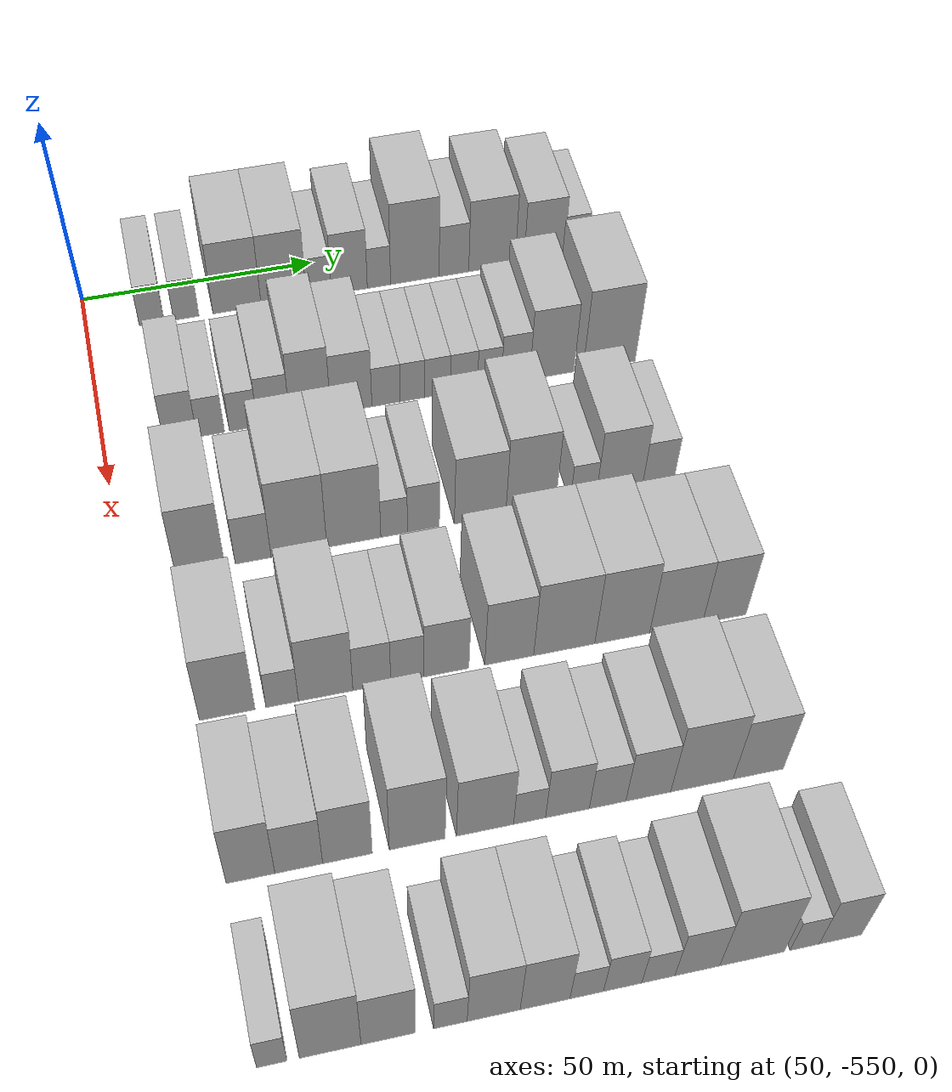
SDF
<sdf version="1.6">
 <world name="default">
  <model name="building_1">
   <static>1</static>
   <pose>50.0000 -536.3486 0 0.000000 0.000000 0.000000</pose>
   <link name="link">
    <pose>0 0 6.00 0 0 0</pose>
    <collision name="collision"><geometry><box><size>20.0000 5.3027 12.0000</size></box></geometry></collision>
    <visual name="visual">
     <cast_shadows>0</cast_shadows>
     <geometry><box><size>20.0000 5.3027 12.0000</size></box></geometry>
     <material>
      <script>
       <uri>model://HANNAS_wall/materials/scripts</uri>
       <uri>model://HANNAS_wall/materials/textures</uri>
       <name>vrc/HANNAS_wall</name>
      </script>
     </material>
    </visual>
   </link>
  </model>
  <model name="building_2">
   <static>1</static>
   <pose>50.0000 -528.9705 0 0.000000 0.000000 0.000000</pose>
   <link name="link">
    <pose>0 0 6.00 0 0 0</pose>
    <collision name="collision"><geometry><box><size>20.0000 5.4536 12.0000</size></box></geometry></collision>
    <visual name="visual">
     <cast_shadows>0</cast_shadows>
     <geometry><box><size>20.0000 5.4536 12.0000</size></box></geometry>
     <material>
      <script>
       <uri>model://HANNAS_wall/materials/scripts</uri>
       <uri>model://HANNAS_wall/materials/textures</uri>
       <name>vrc/HANNAS_wall</name>
      </script>
     </material>
    </visual>
   </link>
  </model>
  <model name="building_3">
   <static>1</static>
   <pose>50.0000 -518.0361 0 0.000000 0.000000 0.000000</pose>
   <link name="link">
    <pose>0 0 10.50 0 0 0</pose>
    <collision name="collision"><geometry><box><size>20.0000 10.4152 21.0000</size></box></geometry></collision>
    <visual name="visual">
     <cast_shadows>0</cast_shadows>
     <geometry><box><size>20.0000 10.4152 21.0000</size></box></geometry>
     <material>
      <script>
       <uri>model://HANNAS_wall/materials/scripts</uri>
       <uri>model://HANNAS_wall/materials/textures</uri>
       <name>vrc/HANNAS_wall</name>
      </script>
     </material>
    </visual>
   </link>
  </model>
  <model name="building_4">
   <static>1</static>
   <pose>50.0000 -507.9157 0 0.000000 0.000000 0.000000</pose>
   <link name="link">
    <pose>0 0 10.50 0 0 0</pose>
    <collision name="collision"><geometry><box><size>20.0000 9.8255 21.0000</size></box></geometry></collision>
    <visual name="visual">
     <cast_shadows>0</cast_shadows>
     <geometry><box><size>20.0000 9.8255 21.0000</size></box></geometry>
     <material>
      <script>
       <uri>model://HANNAS_wall/materials/scripts</uri>
       <uri>model://HANNAS_wall/materials/textures</uri>
       <name>vrc/HANNAS_wall</name>
      </script>
     </material>
    </visual>
   </link>
  </model>
  <model name="building_5">
   <static>1</static>
   <pose>50.0000 -500.2931 0 0.000000 0.000000 0.000000</pose>
   <link name="link">
    <pose>0 0 6.00 0 0 0</pose>
    <collision name="collision"><geometry><box><size>20.0000 5.4197 12.0000</size></box></geometry></collision>
    <visual name="visual">
     <cast_shadows>0</cast_shadows>
     <geometry><box><size>20.0000 5.4197 12.0000</size></box></geometry>
     <material>
      <script>
       <uri>model://HANNAS_wall/materials/scripts</uri>
       <uri>model://HANNAS_wall/materials/textures</uri>
       <name>vrc/HANNAS_wall</name>
      </script>
     </material>
    </visual>
   </link>
  </model>
  <model name="building_6">
   <static>1</static>
   <pose>50.0000 -493.6248 0 0.000000 0.000000 0.000000</pose>
   <link name="link">
    <pose>0 0 9.00 0 0 0</pose>
    <collision name="collision"><geometry><box><size>20.0000 7.9168 18.0000</size></box></geometry></collision>
    <visual name="visual">
     <cast_shadows>0</cast_shadows>
     <geometry><box><size>20.0000 7.9168 18.0000</size></box></geometry>
     <material>
      <script>
       <uri>model://HANNAS_wall/materials/scripts</uri>
       <uri>model://HANNAS_wall/materials/textures</uri>
       <name>vrc/HANNAS_wall</name>
      </script>
     </material>
    </visual>
   </link>
  </model>
  <model name="building_7">
   <static>1</static>
   <pose>50.0000 -487.1094 0 0.000000 0.000000 0.000000</pose>
   <link name="link">
    <pose>0 0 6.00 0 0 0</pose>
    <collision name="collision"><geometry><box><size>20.0000 5.1140 12.0000</size></box></geometry></collision>
    <visual name="visual">
     <cast_shadows>0</cast_shadows>
     <geometry><box><size>20.0000 5.1140 12.0000</size></box></geometry>
     <material>
      <script>
       <uri>model://HANNAS_wall/materials/scripts</uri>
       <uri>model://HANNAS_wall/materials/textures</uri>
       <name>vrc/HANNAS_wall</name>
      </script>
     </material>
    </visual>
   </link>
  </model>
  <model name="building_8">
   <static>1</static>
   <pose>50.0000 -479.1775 0 0.000000 0.000000 0.000000</pose>
   <link name="link">
    <pose>0 0 12.00 0 0 0</pose>
    <collision name="collision"><geometry><box><size>20.0000 10.7500 24.0000</size></box></geometry></collision>
    <visual name="visual">
     <cast_shadows>0</cast_shadows>
     <geometry><box><size>20.0000 10.7500 24.0000</size></box></geometry>
     <material>
      <script>
       <uri>model://HANNAS_wall/materials/scripts</uri>
       <uri>model://HANNAS_wall/materials/textures</uri>
       <name>vrc/HANNAS_wall</name>
      </script>
     </material>
    </visual>
   </link>
  </model>
  <model name="building_9">
   <static>1</static>
   <pose>50.0000 -470.5047 0 0.000000 0.000000 0.000000</pose>
   <link name="link">
    <pose>0 0 7.50 0 0 0</pose>
    <collision name="collision"><geometry><box><size>20.0000 6.5956 15.0000</size></box></geometry></collision>
    <visual name="visual">
     <cast_shadows>0</cast_shadows>
     <geometry><box><size>20.0000 6.5956 15.0000</size></box></geometry>
     <material>
      <script>
       <uri>model://HANNAS_wall/materials/scripts</uri>
       <uri>model://HANNAS_wall/materials/textures</uri>
       <name>vrc/HANNAS_wall</name>
      </script>
     </material>
    </visual>
   </link>
  </model>
  <model name="building_10">
   <static>1</static>
   <pose>50.0000 -462.0079 0 0.000000 0.000000 0.000000</pose>
   <link name="link">
    <pose>0 0 10.50 0 0 0</pose>
    <collision name="collision"><geometry><box><size>20.0000 10.3980 21.0000</size></box></geometry></collision>
    <visual name="visual">
     <cast_shadows>0</cast_shadows>
     <geometry><box><size>20.0000 10.3980 21.0000</size></box></geometry>
     <material>
      <script>
       <uri>model://HANNAS_wall/materials/scripts</uri>
       <uri>model://HANNAS_wall/materials/textures</uri>
       <name>vrc/HANNAS_wall</name>
      </script>
     </material>
    </visual>
   </link>
  </model>
  <model name="building_11">
   <static>1</static>
   <pose>50.0000 -450.3108 0 0.000000 0.000000 0.000000</pose>
   <link name="link">
    <pose>0 0 9.00 0 0 0</pose>
    <collision name="collision"><geometry><box><size>20.0000 8.9963 18.0000</size></box></geometry></collision>
    <visual name="visual">
     <cast_shadows>0</cast_shadows>
     <geometry><box><size>20.0000 8.9963 18.0000</size></box></geometry>
     <material>
      <script>
       <uri>model://HANNAS_wall/materials/scripts</uri>
       <uri>model://HANNAS_wall/materials/textures</uri>
       <name>vrc/HANNAS_wall</name>
      </script>
     </material>
    </visual>
   </link>
  </model>
  <model name="building_12">
   <static>1</static>
   <pose>50.0000 -443.0770 0 0.000000 0.000000 0.000000</pose>
   <link name="link">
    <pose>0 0 6.00 0 0 0</pose>
    <collision name="collision"><geometry><box><size>20.0000 5.4713 12.0000</size></box></geometry></collision>
    <visual name="visual">
     <cast_shadows>0</cast_shadows>
     <geometry><box><size>20.0000 5.4713 12.0000</size></box></geometry>
     <material>
      <script>
       <uri>model://HANNAS_wall/materials/scripts</uri>
       <uri>model://HANNAS_wall/materials/textures</uri>
       <name>vrc/HANNAS_wall</name>
      </script>
     </material>
    </visual>
   </link>
  </model>
  <model name="building_127">
   <static>1</static>
   <pose>82.0000 -534.6347 0 0.000000 0.000000 0.000000</pose>
   <link name="link">
    <pose>0 0 7.50 0 0 0</pose>
    <collision name="collision"><geometry><box><size>20.0000 6.7305 15.0000</size></box></geometry></collision>
    <visual name="visual">
     <cast_shadows>0</cast_shadows>
     <geometry><box><size>20.0000 6.7305 15.0000</size></box></geometry>
     <material>
      <script>
       <uri>model://HANNAS_wall/materials/scripts</uri>
       <uri>model://HANNAS_wall/materials/textures</uri>
       <name>vrc/HANNAS_wall</name>
      </script>
     </material>
    </visual>
   </link>
  </model>
  <model name="building_128">
   <static>1</static>
   <pose>82.0000 -528.4483 0 0.000000 0.000000 0.000000</pose>
   <link name="link">
    <pose>0 0 6.00 0 0 0</pose>
    <collision name="collision"><geometry><box><size>20.0000 5.6423 12.0000</size></box></geometry></collision>
    <visual name="visual">
     <cast_shadows>0</cast_shadows>
     <geometry><box><size>20.0000 5.6423 12.0000</size></box></geometry>
     <material>
      <script>
       <uri>model://HANNAS_wall/materials/scripts</uri>
       <uri>model://HANNAS_wall/materials/textures</uri>
       <name>vrc/HANNAS_wall</name>
      </script>
     </material>
    </visual>
   </link>
  </model>
  <model name="building_129">
   <static>1</static>
   <pose>82.0000 -521.7568 0 0.000000 0.000000 0.000000</pose>
   <link name="link">
    <pose>0 0 6.00 0 0 0</pose>
    <collision name="collision"><geometry><box><size>20.0000 5.7408 12.0000</size></box></geometry></collision>
    <visual name="visual">
     <cast_shadows>0</cast_shadows>
     <geometry><box><size>20.0000 5.7408 12.0000</size></box></geometry>
     <material>
      <script>
       <uri>model://HANNAS_wall/materials/scripts</uri>
       <uri>model://HANNAS_wall/materials/textures</uri>
       <name>vrc/HANNAS_wall</name>
      </script>
     </material>
    </visual>
   </link>
  </model>
  <model name="building_130">
   <static>1</static>
   <pose>82.0000 -515.5422 0 0.000000 0.000000 0.000000</pose>
   <link name="link">
    <pose>0 0 7.50 0 0 0</pose>
    <collision name="collision"><geometry><box><size>20.0000 6.6884 15.0000</size></box></geometry></collision>
    <visual name="visual">
     <cast_shadows>0</cast_shadows>
     <geometry><box><size>20.0000 6.6884 15.0000</size></box></geometry>
     <material>
      <script>
       <uri>model://HANNAS_wall/materials/scripts</uri>
       <uri>model://HANNAS_wall/materials/textures</uri>
       <name>vrc/HANNAS_wall</name>
      </script>
     </material>
    </visual>
   </link>
  </model>
  <model name="building_131">
   <static>1</static>
   <pose>82.0000 -507.9751 0 0.000000 0.000000 0.000000</pose>
   <link name="link">
    <pose>0 0 10.50 0 0 0</pose>
    <collision name="collision"><geometry><box><size>20.0000 8.4457 21.0000</size></box></geometry></collision>
    <visual name="visual">
     <cast_shadows>0</cast_shadows>
     <geometry><box><size>20.0000 8.4457 21.0000</size></box></geometry>
     <material>
      <script>
       <uri>model://HANNAS_wall/materials/scripts</uri>
       <uri>model://HANNAS_wall/materials/textures</uri>
       <name>vrc/HANNAS_wall</name>
      </script>
     </material>
    </visual>
   </link>
  </model>
  <model name="building_132">
   <static>1</static>
   <pose>82.0000 -499.4536 0 0.000000 0.000000 0.000000</pose>
   <link name="link">
    <pose>0 0 9.00 0 0 0</pose>
    <collision name="collision"><geometry><box><size>20.0000 8.5973 18.0000</size></box></geometry></collision>
    <visual name="visual">
     <cast_shadows>0</cast_shadows>
     <geometry><box><size>20.0000 8.5973 18.0000</size></box></geometry>
     <material>
      <script>
       <uri>model://HANNAS_wall/materials/scripts</uri>
       <uri>model://HANNAS_wall/materials/textures</uri>
       <name>vrc/HANNAS_wall</name>
      </script>
     </material>
    </visual>
   </link>
  </model>
  <model name="building_133">
   <static>1</static>
   <pose>82.0000 -492.1977 0 0.000000 0.000000 0.000000</pose>
   <link name="link">
    <pose>0 0 6.00 0 0 0</pose>
    <collision name="collision"><geometry><box><size>20.0000 5.9144 12.0000</size></box></geometry></collision>
    <visual name="visual">
     <cast_shadows>0</cast_shadows>
     <geometry><box><size>20.0000 5.9144 12.0000</size></box></geometry>
     <material>
      <script>
       <uri>model://HANNAS_wall/materials/scripts</uri>
       <uri>model://HANNAS_wall/materials/textures</uri>
       <name>vrc/HANNAS_wall</name>
      </script>
     </material>
    </visual>
   </link>
  </model>
  <model name="building_134">
   <static>1</static>
   <pose>82.0000 -486.6714 0 0.000000 0.000000 0.000000</pose>
   <link name="link">
    <pose>0 0 6.00 0 0 0</pose>
    <collision name="collision"><geometry><box><size>20.0000 5.1383 12.0000</size></box></geometry></collision>
    <visual name="visual">
     <cast_shadows>0</cast_shadows>
     <geometry><box><size>20.0000 5.1383 12.0000</size></box></geometry>
     <material>
      <script>
       <uri>model://HANNAS_wall/materials/scripts</uri>
       <uri>model://HANNAS_wall/materials/textures</uri>
       <name>vrc/HANNAS_wall</name>
      </script>
     </material>
    </visual>
   </link>
  </model>
  <model name="building_135">
   <static>1</static>
   <pose>82.0000 -481.3911 0 0.000000 0.000000 0.000000</pose>
   <link name="link">
    <pose>0 0 6.00 0 0 0</pose>
    <collision name="collision"><geometry><box><size>20.0000 5.4222 12.0000</size></box></geometry></collision>
    <visual name="visual">
     <cast_shadows>0</cast_shadows>
     <geometry><box><size>20.0000 5.4222 12.0000</size></box></geometry>
     <material>
      <script>
       <uri>model://HANNAS_wall/materials/scripts</uri>
       <uri>model://HANNAS_wall/materials/textures</uri>
       <name>vrc/HANNAS_wall</name>
      </script>
     </material>
    </visual>
   </link>
  </model>
  <model name="building_136">
   <static>1</static>
   <pose>82.0000 -475.8081 0 0.000000 0.000000 0.000000</pose>
   <link name="link">
    <pose>0 0 6.00 0 0 0</pose>
    <collision name="collision"><geometry><box><size>20.0000 5.7438 12.0000</size></box></geometry></collision>
    <visual name="visual">
     <cast_shadows>0</cast_shadows>
     <geometry><box><size>20.0000 5.7438 12.0000</size></box></geometry>
     <material>
      <script>
       <uri>model://HANNAS_wall/materials/scripts</uri>
       <uri>model://HANNAS_wall/materials/textures</uri>
       <name>vrc/HANNAS_wall</name>
      </script>
     </material>
    </visual>
   </link>
  </model>
  <model name="building_137">
   <static>1</static>
   <pose>82.0000 -470.3899 0 0.000000 0.000000 0.000000</pose>
   <link name="link">
    <pose>0 0 6.00 0 0 0</pose>
    <collision name="collision"><geometry><box><size>20.0000 5.0925 12.0000</size></box></geometry></collision>
    <visual name="visual">
     <cast_shadows>0</cast_shadows>
     <geometry><box><size>20.0000 5.0925 12.0000</size></box></geometry>
     <material>
      <script>
       <uri>model://HANNAS_wall/materials/scripts</uri>
       <uri>model://HANNAS_wall/materials/textures</uri>
       <name>vrc/HANNAS_wall</name>
      </script>
     </material>
    </visual>
   </link>
  </model>
  <model name="building_138">
   <static>1</static>
   <pose>82.0000 -464.8217 0 0.000000 0.000000 0.000000</pose>
   <link name="link">
    <pose>0 0 7.50 0 0 0</pose>
    <collision name="collision"><geometry><box><size>20.0000 6.0440 15.0000</size></box></geometry></collision>
    <visual name="visual">
     <cast_shadows>0</cast_shadows>
     <geometry><box><size>20.0000 6.0440 15.0000</size></box></geometry>
     <material>
      <script>
       <uri>model://HANNAS_wall/materials/scripts</uri>
       <uri>model://HANNAS_wall/materials/textures</uri>
       <name>vrc/HANNAS_wall</name>
      </script>
     </material>
    </visual>
   </link>
  </model>
  <model name="building_139">
   <static>1</static>
   <pose>82.0000 -457.0503 0 0.000000 0.000000 0.000000</pose>
   <link name="link">
    <pose>0 0 10.50 0 0 0</pose>
    <collision name="collision"><geometry><box><size>20.0000 9.4988 21.0000</size></box></geometry></collision>
    <visual name="visual">
     <cast_shadows>0</cast_shadows>
     <geometry><box><size>20.0000 9.4988 21.0000</size></box></geometry>
     <material>
      <script>
       <uri>model://HANNAS_wall/materials/scripts</uri>
       <uri>model://HANNAS_wall/materials/textures</uri>
       <name>vrc/HANNAS_wall</name>
      </script>
     </material>
    </visual>
   </link>
  </model>
  <model name="building_140">
   <static>1</static>
   <pose>82.0000 -444.6660 0 0.000000 0.000000 0.000000</pose>
   <link name="link">
    <pose>0 0 12.00 0 0 0</pose>
    <collision name="collision"><geometry><box><size>20.0000 11.2698 24.0000</size></box></geometry></collision>
    <visual name="visual">
     <cast_shadows>0</cast_shadows>
     <geometry><box><size>20.0000 11.2698 24.0000</size></box></geometry>
     <material>
      <script>
       <uri>model://HANNAS_wall/materials/scripts</uri>
       <uri>model://HANNAS_wall/materials/textures</uri>
       <name>vrc/HANNAS_wall</name>
      </script>
     </material>
    </visual>
   </link>
  </model>
  <model name="building_244">
   <static>1</static>
   <pose>114.0000 -535.2233 0 0.000000 0.000000 0.000000</pose>
   <link name="link">
    <pose>0 0 10.50 0 0 0</pose>
    <collision name="collision"><geometry><box><size>20.0000 9.5535 21.0000</size></box></geometry></collision>
    <visual name="visual">
     <cast_shadows>0</cast_shadows>
     <geometry><box><size>20.0000 9.5535 21.0000</size></box></geometry>
     <material>
      <script>
       <uri>model://HANNAS_wall/materials/scripts</uri>
       <uri>model://HANNAS_wall/materials/textures</uri>
       <name>vrc/HANNAS_wall</name>
      </script>
     </material>
    </visual>
   </link>
  </model>
  <model name="building_245">
   <static>1</static>
   <pose>114.0000 -524.9560 0 0.000000 0.000000 0.000000</pose>
   <link name="link">
    <pose>0 0 7.50 0 0 0</pose>
    <collision name="collision"><geometry><box><size>20.0000 6.9810 15.0000</size></box></geometry></collision>
    <visual name="visual">
     <cast_shadows>0</cast_shadows>
     <geometry><box><size>20.0000 6.9810 15.0000</size></box></geometry>
     <material>
      <script>
       <uri>model://HANNAS_wall/materials/scripts</uri>
       <uri>model://HANNAS_wall/materials/textures</uri>
       <name>vrc/HANNAS_wall</name>
      </script>
     </material>
    </visual>
   </link>
  </model>
  <model name="building_246">
   <static>1</static>
   <pose>114.0000 -516.0044 0 0.000000 0.000000 0.000000</pose>
   <link name="link">
    <pose>0 0 12.00 0 0 0</pose>
    <collision name="collision"><geometry><box><size>20.0000 10.9223 24.0000</size></box></geometry></collision>
    <visual name="visual">
     <cast_shadows>0</cast_shadows>
     <geometry><box><size>20.0000 10.9223 24.0000</size></box></geometry>
     <material>
      <script>
       <uri>model://HANNAS_wall/materials/scripts</uri>
       <uri>model://HANNAS_wall/materials/textures</uri>
       <name>vrc/HANNAS_wall</name>
      </script>
     </material>
    </visual>
   </link>
  </model>
  <model name="building_247">
   <static>1</static>
   <pose>114.0000 -505.2131 0 0.000000 0.000000 0.000000</pose>
   <link name="link">
    <pose>0 0 12.00 0 0 0</pose>
    <collision name="collision"><geometry><box><size>20.0000 10.6601 24.0000</size></box></geometry></collision>
    <visual name="visual">
     <cast_shadows>0</cast_shadows>
     <geometry><box><size>20.0000 10.6601 24.0000</size></box></geometry>
     <material>
      <script>
       <uri>model://HANNAS_wall/materials/scripts</uri>
       <uri>model://HANNAS_wall/materials/textures</uri>
       <name>vrc/HANNAS_wall</name>
      </script>
     </material>
    </visual>
   </link>
  </model>
  <model name="building_248">
   <static>1</static>
   <pose>114.0000 -497.2345 0 0.000000 0.000000 0.000000</pose>
   <link name="link">
    <pose>0 0 6.00 0 0 0</pose>
    <collision name="collision"><geometry><box><size>20.0000 5.2972 12.0000</size></box></geometry></collision>
    <visual name="visual">
     <cast_shadows>0</cast_shadows>
     <geometry><box><size>20.0000 5.2972 12.0000</size></box></geometry>
     <material>
      <script>
       <uri>model://HANNAS_wall/materials/scripts</uri>
       <uri>model://HANNAS_wall/materials/textures</uri>
       <name>vrc/HANNAS_wall</name>
      </script>
     </material>
    </visual>
   </link>
  </model>
  <model name="building_249">
   <static>1</static>
   <pose>114.0000 -491.4112 0 0.000000 0.000000 0.000000</pose>
   <link name="link">
    <pose>0 0 7.50 0 0 0</pose>
    <collision name="collision"><geometry><box><size>20.0000 6.3495 15.0000</size></box></geometry></collision>
    <visual name="visual">
     <cast_shadows>0</cast_shadows>
     <geometry><box><size>20.0000 6.3495 15.0000</size></box></geometry>
     <material>
      <script>
       <uri>model://HANNAS_wall/materials/scripts</uri>
       <uri>model://HANNAS_wall/materials/textures</uri>
       <name>vrc/HANNAS_wall</name>
      </script>
     </material>
    </visual>
   </link>
  </model>
  <model name="building_250">
   <static>1</static>
   <pose>114.0000 -480.0677 0 0.000000 0.000000 0.000000</pose>
   <link name="link">
    <pose>0 0 10.50 0 0 0</pose>
    <collision name="collision"><geometry><box><size>20.0000 10.3374 21.0000</size></box></geometry></collision>
    <visual name="visual">
     <cast_shadows>0</cast_shadows>
     <geometry><box><size>20.0000 10.3374 21.0000</size></box></geometry>
     <material>
      <script>
       <uri>model://HANNAS_wall/materials/scripts</uri>
       <uri>model://HANNAS_wall/materials/textures</uri>
       <name>vrc/HANNAS_wall</name>
      </script>
     </material>
    </visual>
   </link>
  </model>
  <model name="building_251">
   <static>1</static>
   <pose>114.0000 -469.8584 0 0.000000 0.000000 0.000000</pose>
   <link name="link">
    <pose>0 0 12.00 0 0 0</pose>
    <collision name="collision"><geometry><box><size>20.0000 10.0812 24.0000</size></box></geometry></collision>
    <visual name="visual">
     <cast_shadows>0</cast_shadows>
     <geometry><box><size>20.0000 10.0812 24.0000</size></box></geometry>
     <material>
      <script>
       <uri>model://HANNAS_wall/materials/scripts</uri>
       <uri>model://HANNAS_wall/materials/textures</uri>
       <name>vrc/HANNAS_wall</name>
      </script>
     </material>
    </visual>
   </link>
  </model>
  <model name="building_252">
   <static>1</static>
   <pose>114.0000 -459.1883 0 0.000000 0.000000 0.000000</pose>
   <link name="link">
    <pose>0 0 6.00 0 0 0</pose>
    <collision name="collision"><geometry><box><size>20.0000 5.2591 12.0000</size></box></geometry></collision>
    <visual name="visual">
     <cast_shadows>0</cast_shadows>
     <geometry><box><size>20.0000 5.2591 12.0000</size></box></geometry>
     <material>
      <script>
       <uri>model://HANNAS_wall/materials/scripts</uri>
       <uri>model://HANNAS_wall/materials/textures</uri>
       <name>vrc/HANNAS_wall</name>
      </script>
     </material>
    </visual>
   </link>
  </model>
  <model name="building_253">
   <static>1</static>
   <pose>114.0000 -451.8516 0 0.000000 0.000000 0.000000</pose>
   <link name="link">
    <pose>0 0 10.50 0 0 0</pose>
    <collision name="collision"><geometry><box><size>20.0000 9.4144 21.0000</size></box></geometry></collision>
    <visual name="visual">
     <cast_shadows>0</cast_shadows>
     <geometry><box><size>20.0000 9.4144 21.0000</size></box></geometry>
     <material>
      <script>
       <uri>model://HANNAS_wall/materials/scripts</uri>
       <uri>model://HANNAS_wall/materials/textures</uri>
       <name>vrc/HANNAS_wall</name>
      </script>
     </material>
    </visual>
   </link>
  </model>
  <model name="building_254">
   <static>1</static>
   <pose>114.0000 -443.9017 0 0.000000 0.000000 0.000000</pose>
   <link name="link">
    <pose>0 0 7.50 0 0 0</pose>
    <collision name="collision"><geometry><box><size>20.0000 6.4853 15.0000</size></box></geometry></collision>
    <visual name="visual">
     <cast_shadows>0</cast_shadows>
     <geometry><box><size>20.0000 6.4853 15.0000</size></box></geometry>
     <material>
      <script>
       <uri>model://HANNAS_wall/materials/scripts</uri>
       <uri>model://HANNAS_wall/materials/textures</uri>
       <name>vrc/HANNAS_wall</name>
      </script>
     </material>
    </visual>
   </link>
  </model>
  <model name="building_362">
   <static>1</static>
   <pose>146.0000 -534.9016 0 0.000000 0.000000 0.000000</pose>
   <link name="link">
    <pose>0 0 10.50 0 0 0</pose>
    <collision name="collision"><geometry><box><size>20.0000 10.1967 21.0000</size></box></geometry></collision>
    <visual name="visual">
     <cast_shadows>0</cast_shadows>
     <geometry><box><size>20.0000 10.1967 21.0000</size></box></geometry>
     <material>
      <script>
       <uri>model://HANNAS_wall/materials/scripts</uri>
       <uri>model://HANNAS_wall/materials/textures</uri>
       <name>vrc/HANNAS_wall</name>
      </script>
     </material>
    </visual>
   </link>
  </model>
  <model name="building_363">
   <static>1</static>
   <pose>146.0000 -524.8042 0 0.000000 0.000000 0.000000</pose>
   <link name="link">
    <pose>0 0 6.00 0 0 0</pose>
    <collision name="collision"><geometry><box><size>20.0000 5.9981 12.0000</size></box></geometry></collision>
    <visual name="visual">
     <cast_shadows>0</cast_shadows>
     <geometry><box><size>20.0000 5.9981 12.0000</size></box></geometry>
     <material>
      <script>
       <uri>model://HANNAS_wall/materials/scripts</uri>
       <uri>model://HANNAS_wall/materials/textures</uri>
       <name>vrc/HANNAS_wall</name>
      </script>
     </material>
    </visual>
   </link>
  </model>
  <model name="building_364">
   <static>1</static>
   <pose>146.0000 -516.7475 0 0.000000 0.000000 0.000000</pose>
   <link name="link">
    <pose>0 0 10.50 0 0 0</pose>
    <collision name="collision"><geometry><box><size>20.0000 10.1153 21.0000</size></box></geometry></collision>
    <visual name="visual">
     <cast_shadows>0</cast_shadows>
     <geometry><box><size>20.0000 10.1153 21.0000</size></box></geometry>
     <material>
      <script>
       <uri>model://HANNAS_wall/materials/scripts</uri>
       <uri>model://HANNAS_wall/materials/textures</uri>
       <name>vrc/HANNAS_wall</name>
      </script>
     </material>
    </visual>
   </link>
  </model>
  <model name="building_365">
   <static>1</static>
   <pose>146.0000 -508.1534 0 0.000000 0.000000 0.000000</pose>
   <link name="link">
    <pose>0 0 7.50 0 0 0</pose>
    <collision name="collision"><geometry><box><size>20.0000 7.0729 15.0000</size></box></geometry></collision>
    <visual name="visual">
     <cast_shadows>0</cast_shadows>
     <geometry><box><size>20.0000 7.0729 15.0000</size></box></geometry>
     <material>
      <script>
       <uri>model://HANNAS_wall/materials/scripts</uri>
       <uri>model://HANNAS_wall/materials/textures</uri>
       <name>vrc/HANNAS_wall</name>
      </script>
     </material>
    </visual>
   </link>
  </model>
  <model name="building_366">
   <static>1</static>
   <pose>146.0000 -501.5098 0 0.000000 0.000000 0.000000</pose>
   <link name="link">
    <pose>0 0 7.50 0 0 0</pose>
    <collision name="collision"><geometry><box><size>20.0000 6.2142 15.0000</size></box></geometry></collision>
    <visual name="visual">
     <cast_shadows>0</cast_shadows>
     <geometry><box><size>20.0000 6.2142 15.0000</size></box></geometry>
     <material>
      <script>
       <uri>model://HANNAS_wall/materials/scripts</uri>
       <uri>model://HANNAS_wall/materials/textures</uri>
       <name>vrc/HANNAS_wall</name>
      </script>
     </material>
    </visual>
   </link>
  </model>
  <model name="building_367">
   <static>1</static>
   <pose>146.0000 -494.1438 0 0.000000 0.000000 0.000000</pose>
   <link name="link">
    <pose>0 0 9.00 0 0 0</pose>
    <collision name="collision"><geometry><box><size>20.0000 8.5179 18.0000</size></box></geometry></collision>
    <visual name="visual">
     <cast_shadows>0</cast_shadows>
     <geometry><box><size>20.0000 8.5179 18.0000</size></box></geometry>
     <material>
      <script>
       <uri>model://HANNAS_wall/materials/scripts</uri>
       <uri>model://HANNAS_wall/materials/textures</uri>
       <name>vrc/HANNAS_wall</name>
      </script>
     </material>
    </visual>
   </link>
  </model>
  <model name="building_368">
   <static>1</static>
   <pose>146.0000 -482.2129 0 0.000000 0.000000 0.000000</pose>
   <link name="link">
    <pose>0 0 10.50 0 0 0</pose>
    <collision name="collision"><geometry><box><size>20.0000 9.3439 21.0000</size></box></geometry></collision>
    <visual name="visual">
     <cast_shadows>0</cast_shadows>
     <geometry><box><size>20.0000 9.3439 21.0000</size></box></geometry>
     <material>
      <script>
       <uri>model://HANNAS_wall/materials/scripts</uri>
       <uri>model://HANNAS_wall/materials/textures</uri>
       <name>vrc/HANNAS_wall</name>
      </script>
     </material>
    </visual>
   </link>
  </model>
  <model name="building_369">
   <static>1</static>
   <pose>146.0000 -471.6706 0 0.000000 0.000000 0.000000</pose>
   <link name="link">
    <pose>0 0 12.00 0 0 0</pose>
    <collision name="collision"><geometry><box><size>20.0000 11.7408 24.0000</size></box></geometry></collision>
    <visual name="visual">
     <cast_shadows>0</cast_shadows>
     <geometry><box><size>20.0000 11.7408 24.0000</size></box></geometry>
     <material>
      <script>
       <uri>model://HANNAS_wall/materials/scripts</uri>
       <uri>model://HANNAS_wall/materials/textures</uri>
       <name>vrc/HANNAS_wall</name>
      </script>
     </material>
    </visual>
   </link>
  </model>
  <model name="building_370">
   <static>1</static>
   <pose>146.0000 -460.4705 0 0.000000 0.000000 0.000000</pose>
   <link name="link">
    <pose>0 0 12.00 0 0 0</pose>
    <collision name="collision"><geometry><box><size>20.0000 10.6593 24.0000</size></box></geometry></collision>
    <visual name="visual">
     <cast_shadows>0</cast_shadows>
     <geometry><box><size>20.0000 10.6593 24.0000</size></box></geometry>
     <material>
      <script>
       <uri>model://HANNAS_wall/materials/scripts</uri>
       <uri>model://HANNAS_wall/materials/textures</uri>
       <name>vrc/HANNAS_wall</name>
      </script>
     </material>
    </visual>
   </link>
  </model>
  <model name="building_371">
   <static>1</static>
   <pose>146.0000 -449.9640 0 0.000000 0.000000 0.000000</pose>
   <link name="link">
    <pose>0 0 10.50 0 0 0</pose>
    <collision name="collision"><geometry><box><size>20.0000 10.3537 21.0000</size></box></geometry></collision>
    <visual name="visual">
     <cast_shadows>0</cast_shadows>
     <geometry><box><size>20.0000 10.3537 21.0000</size></box></geometry>
     <material>
      <script>
       <uri>model://HANNAS_wall/materials/scripts</uri>
       <uri>model://HANNAS_wall/materials/textures</uri>
       <name>vrc/HANNAS_wall</name>
      </script>
     </material>
    </visual>
   </link>
  </model>
  <model name="building_372">
   <static>1</static>
   <pose>146.0000 -440.5031 0 0.000000 0.000000 0.000000</pose>
   <link name="link">
    <pose>0 0 10.50 0 0 0</pose>
    <collision name="collision"><geometry><box><size>20.0000 8.5681 21.0000</size></box></geometry></collision>
    <visual name="visual">
     <cast_shadows>0</cast_shadows>
     <geometry><box><size>20.0000 8.5681 21.0000</size></box></geometry>
     <material>
      <script>
       <uri>model://HANNAS_wall/materials/scripts</uri>
       <uri>model://HANNAS_wall/materials/textures</uri>
       <name>vrc/HANNAS_wall</name>
      </script>
     </material>
    </visual>
   </link>
  </model>
  <model name="building_483">
   <static>1</static>
   <pose>178.0000 -535.7918 0 0.000000 0.000000 0.000000</pose>
   <link name="link">
    <pose>0 0 10.50 0 0 0</pose>
    <collision name="collision"><geometry><box><size>20.0000 8.4163 21.0000</size></box></geometry></collision>
    <visual name="visual">
     <cast_shadows>0</cast_shadows>
     <geometry><box><size>20.0000 8.4163 21.0000</size></box></geometry>
     <material>
      <script>
       <uri>model://HANNAS_wall/materials/scripts</uri>
       <uri>model://HANNAS_wall/materials/textures</uri>
       <name>vrc/HANNAS_wall</name>
      </script>
     </material>
    </visual>
   </link>
  </model>
  <model name="building_484">
   <static>1</static>
   <pose>178.0000 -527.4279 0 0.000000 0.000000 0.000000</pose>
   <link name="link">
    <pose>0 0 9.00 0 0 0</pose>
    <collision name="collision"><geometry><box><size>20.0000 8.3116 18.0000</size></box></geometry></collision>
    <visual name="visual">
     <cast_shadows>0</cast_shadows>
     <geometry><box><size>20.0000 8.3116 18.0000</size></box></geometry>
     <material>
      <script>
       <uri>model://HANNAS_wall/materials/scripts</uri>
       <uri>model://HANNAS_wall/materials/textures</uri>
       <name>vrc/HANNAS_wall</name>
      </script>
     </material>
    </visual>
   </link>
  </model>
  <model name="building_485">
   <static>1</static>
   <pose>178.0000 -518.9214 0 0.000000 0.000000 0.000000</pose>
   <link name="link">
    <pose>0 0 10.50 0 0 0</pose>
    <collision name="collision"><geometry><box><size>20.0000 8.7014 21.0000</size></box></geometry></collision>
    <visual name="visual">
     <cast_shadows>0</cast_shadows>
     <geometry><box><size>20.0000 8.7014 21.0000</size></box></geometry>
     <material>
      <script>
       <uri>model://HANNAS_wall/materials/scripts</uri>
       <uri>model://HANNAS_wall/materials/textures</uri>
       <name>vrc/HANNAS_wall</name>
      </script>
     </material>
    </visual>
   </link>
  </model>
  <model name="building_486">
   <static>1</static>
   <pose>178.0000 -506.6313 0 0.000000 0.000000 0.000000</pose>
   <link name="link">
    <pose>0 0 12.00 0 0 0</pose>
    <collision name="collision"><geometry><box><size>20.0000 9.8787 24.0000</size></box></geometry></collision>
    <visual name="visual">
     <cast_shadows>0</cast_shadows>
     <geometry><box><size>20.0000 9.8787 24.0000</size></box></geometry>
     <material>
      <script>
       <uri>model://HANNAS_wall/materials/scripts</uri>
       <uri>model://HANNAS_wall/materials/textures</uri>
       <name>vrc/HANNAS_wall</name>
      </script>
     </material>
    </visual>
   </link>
  </model>
  <model name="building_487">
   <static>1</static>
   <pose>178.0000 -494.5780 0 0.000000 0.000000 0.000000</pose>
   <link name="link">
    <pose>0 0 10.50 0 0 0</pose>
    <collision name="collision"><geometry><box><size>20.0000 10.2279 21.0000</size></box></geometry></collision>
    <visual name="visual">
     <cast_shadows>0</cast_shadows>
     <geometry><box><size>20.0000 10.2279 21.0000</size></box></geometry>
     <material>
      <script>
       <uri>model://HANNAS_wall/materials/scripts</uri>
       <uri>model://HANNAS_wall/materials/textures</uri>
       <name>vrc/HANNAS_wall</name>
      </script>
     </material>
    </visual>
   </link>
  </model>
  <model name="building_488">
   <static>1</static>
   <pose>178.0000 -486.5922 0 0.000000 0.000000 0.000000</pose>
   <link name="link">
    <pose>0 0 6.00 0 0 0</pose>
    <collision name="collision"><geometry><box><size>20.0000 5.7438 12.0000</size></box></geometry></collision>
    <visual name="visual">
     <cast_shadows>0</cast_shadows>
     <geometry><box><size>20.0000 5.7438 12.0000</size></box></geometry>
     <material>
      <script>
       <uri>model://HANNAS_wall/materials/scripts</uri>
       <uri>model://HANNAS_wall/materials/textures</uri>
       <name>vrc/HANNAS_wall</name>
      </script>
     </material>
    </visual>
   </link>
  </model>
  <model name="building_489">
   <static>1</static>
   <pose>178.0000 -479.7527 0 0.000000 0.000000 0.000000</pose>
   <link name="link">
    <pose>0 0 9.00 0 0 0</pose>
    <collision name="collision"><geometry><box><size>20.0000 7.9352 18.0000</size></box></geometry></collision>
    <visual name="visual">
     <cast_shadows>0</cast_shadows>
     <geometry><box><size>20.0000 7.9352 18.0000</size></box></geometry>
     <material>
      <script>
       <uri>model://HANNAS_wall/materials/scripts</uri>
       <uri>model://HANNAS_wall/materials/textures</uri>
       <name>vrc/HANNAS_wall</name>
      </script>
     </material>
    </visual>
   </link>
  </model>
  <model name="building_490">
   <static>1</static>
   <pose>178.0000 -472.4570 0 0.000000 0.000000 0.000000</pose>
   <link name="link">
    <pose>0 0 7.50 0 0 0</pose>
    <collision name="collision"><geometry><box><size>20.0000 6.6561 15.0000</size></box></geometry></collision>
    <visual name="visual">
     <cast_shadows>0</cast_shadows>
     <geometry><box><size>20.0000 6.6561 15.0000</size></box></geometry>
     <material>
      <script>
       <uri>model://HANNAS_wall/materials/scripts</uri>
       <uri>model://HANNAS_wall/materials/textures</uri>
       <name>vrc/HANNAS_wall</name>
      </script>
     </material>
    </visual>
   </link>
  </model>
  <model name="building_491">
   <static>1</static>
   <pose>178.0000 -465.0163 0 0.000000 0.000000 0.000000</pose>
   <link name="link">
    <pose>0 0 9.00 0 0 0</pose>
    <collision name="collision"><geometry><box><size>20.0000 8.2252 18.0000</size></box></geometry></collision>
    <visual name="visual">
     <cast_shadows>0</cast_shadows>
     <geometry><box><size>20.0000 8.2252 18.0000</size></box></geometry>
     <material>
      <script>
       <uri>model://HANNAS_wall/materials/scripts</uri>
       <uri>model://HANNAS_wall/materials/textures</uri>
       <name>vrc/HANNAS_wall</name>
      </script>
     </material>
    </visual>
   </link>
  </model>
  <model name="building_492">
   <static>1</static>
   <pose>178.0000 -455.1304 0 0.000000 0.000000 0.000000</pose>
   <link name="link">
    <pose>0 0 12.00 0 0 0</pose>
    <collision name="collision"><geometry><box><size>20.0000 11.5466 24.0000</size></box></geometry></collision>
    <visual name="visual">
     <cast_shadows>0</cast_shadows>
     <geometry><box><size>20.0000 11.5466 24.0000</size></box></geometry>
     <material>
      <script>
       <uri>model://HANNAS_wall/materials/scripts</uri>
       <uri>model://HANNAS_wall/materials/textures</uri>
       <name>vrc/HANNAS_wall</name>
      </script>
     </material>
    </visual>
   </link>
  </model>
  <model name="building_493">
   <static>1</static>
   <pose>178.0000 -444.6760 0 0.000000 0.000000 0.000000</pose>
   <link name="link">
    <pose>0 0 10.50 0 0 0</pose>
    <collision name="collision"><geometry><box><size>20.0000 9.3623 21.0000</size></box></geometry></collision>
    <visual name="visual">
     <cast_shadows>0</cast_shadows>
     <geometry><box><size>20.0000 9.3623 21.0000</size></box></geometry>
     <material>
      <script>
       <uri>model://HANNAS_wall/materials/scripts</uri>
       <uri>model://HANNAS_wall/materials/textures</uri>
       <name>vrc/HANNAS_wall</name>
      </script>
     </material>
    </visual>
   </link>
  </model>
  <model name="building_604">
   <static>1</static>
   <pose>210.0000 -537.5135 0 0.000000 0.000000 0.000000</pose>
   <link name="link">
    <pose>0 0 6.00 0 0 0</pose>
    <collision name="collision"><geometry><box><size>20.0000 4.9729 12.0000</size></box></geometry></collision>
    <visual name="visual">
     <cast_shadows>0</cast_shadows>
     <geometry><box><size>20.0000 4.9729 12.0000</size></box></geometry>
     <material>
      <script>
       <uri>model://HANNAS_wall/materials/scripts</uri>
       <uri>model://HANNAS_wall/materials/textures</uri>
       <name>vrc/HANNAS_wall</name>
      </script>
     </material>
    </visual>
   </link>
  </model>
  <model name="building_605">
   <static>1</static>
   <pose>210.0000 -527.9775 0 0.000000 0.000000 0.000000</pose>
   <link name="link">
    <pose>0 0 12.00 0 0 0</pose>
    <collision name="collision"><geometry><box><size>20.0000 10.0993 24.0000</size></box></geometry></collision>
    <visual name="visual">
     <cast_shadows>0</cast_shadows>
     <geometry><box><size>20.0000 10.0993 24.0000</size></box></geometry>
     <material>
      <script>
       <uri>model://HANNAS_wall/materials/scripts</uri>
       <uri>model://HANNAS_wall/materials/textures</uri>
       <name>vrc/HANNAS_wall</name>
      </script>
     </material>
    </visual>
   </link>
  </model>
  <model name="building_606">
   <static>1</static>
   <pose>210.0000 -518.4236 0 0.000000 0.000000 0.000000</pose>
   <link name="link">
    <pose>0 0 10.50 0 0 0</pose>
    <collision name="collision"><geometry><box><size>20.0000 9.0085 21.0000</size></box></geometry></collision>
    <visual name="visual">
     <cast_shadows>0</cast_shadows>
     <geometry><box><size>20.0000 9.0085 21.0000</size></box></geometry>
     <material>
      <script>
       <uri>model://HANNAS_wall/materials/scripts</uri>
       <uri>model://HANNAS_wall/materials/textures</uri>
       <name>vrc/HANNAS_wall</name>
      </script>
     </material>
    </visual>
   </link>
  </model>
  <model name="building_607">
   <static>1</static>
   <pose>210.0000 -508.1250 0 0.000000 0.000000 0.000000</pose>
   <link name="link">
    <pose>0 0 6.00 0 0 0</pose>
    <collision name="collision"><geometry><box><size>20.0000 5.5888 12.0000</size></box></geometry></collision>
    <visual name="visual">
     <cast_shadows>0</cast_shadows>
     <geometry><box><size>20.0000 5.5888 12.0000</size></box></geometry>
     <material>
      <script>
       <uri>model://HANNAS_wall/materials/scripts</uri>
       <uri>model://HANNAS_wall/materials/textures</uri>
       <name>vrc/HANNAS_wall</name>
      </script>
     </material>
    </visual>
   </link>
  </model>
  <model name="building_608">
   <static>1</static>
   <pose>210.0000 -500.8802 0 0.000000 0.000000 0.000000</pose>
   <link name="link">
    <pose>0 0 10.50 0 0 0</pose>
    <collision name="collision"><geometry><box><size>20.0000 8.9007 21.0000</size></box></geometry></collision>
    <visual name="visual">
     <cast_shadows>0</cast_shadows>
     <geometry><box><size>20.0000 8.9007 21.0000</size></box></geometry>
     <material>
      <script>
       <uri>model://HANNAS_wall/materials/scripts</uri>
       <uri>model://HANNAS_wall/materials/textures</uri>
       <name>vrc/HANNAS_wall</name>
      </script>
     </material>
    </visual>
   </link>
  </model>
  <model name="building_609">
   <static>1</static>
   <pose>210.0000 -492.2215 0 0.000000 0.000000 0.000000</pose>
   <link name="link">
    <pose>0 0 10.50 0 0 0</pose>
    <collision name="collision"><geometry><box><size>20.0000 8.4168 21.0000</size></box></geometry></collision>
    <visual name="visual">
     <cast_shadows>0</cast_shadows>
     <geometry><box><size>20.0000 8.4168 21.0000</size></box></geometry>
     <material>
      <script>
       <uri>model://HANNAS_wall/materials/scripts</uri>
       <uri>model://HANNAS_wall/materials/textures</uri>
       <name>vrc/HANNAS_wall</name>
      </script>
     </material>
    </visual>
   </link>
  </model>
  <model name="building_610">
   <static>1</static>
   <pose>210.0000 -485.1576 0 0.000000 0.000000 0.000000</pose>
   <link name="link">
    <pose>0 0 6.00 0 0 0</pose>
    <collision name="collision"><geometry><box><size>20.0000 5.7110 12.0000</size></box></geometry></collision>
    <visual name="visual">
     <cast_shadows>0</cast_shadows>
     <geometry><box><size>20.0000 5.7110 12.0000</size></box></geometry>
     <material>
      <script>
       <uri>model://HANNAS_wall/materials/scripts</uri>
       <uri>model://HANNAS_wall/materials/textures</uri>
       <name>vrc/HANNAS_wall</name>
      </script>
     </material>
    </visual>
   </link>
  </model>
  <model name="building_611">
   <static>1</static>
   <pose>210.0000 -479.0257 0 0.000000 0.000000 0.000000</pose>
   <link name="link">
    <pose>0 0 7.50 0 0 0</pose>
    <collision name="collision"><geometry><box><size>20.0000 6.5527 15.0000</size></box></geometry></collision>
    <visual name="visual">
     <cast_shadows>0</cast_shadows>
     <geometry><box><size>20.0000 6.5527 15.0000</size></box></geometry>
     <material>
      <script>
       <uri>model://HANNAS_wall/materials/scripts</uri>
       <uri>model://HANNAS_wall/materials/textures</uri>
       <name>vrc/HANNAS_wall</name>
      </script>
     </material>
    </visual>
   </link>
  </model>
  <model name="building_612">
   <static>1</static>
   <pose>210.0000 -472.9010 0 0.000000 0.000000 0.000000</pose>
   <link name="link">
    <pose>0 0 6.00 0 0 0</pose>
    <collision name="collision"><geometry><box><size>20.0000 5.6968 12.0000</size></box></geometry></collision>
    <visual name="visual">
     <cast_shadows>0</cast_shadows>
     <geometry><box><size>20.0000 5.6968 12.0000</size></box></geometry>
     <material>
      <script>
       <uri>model://HANNAS_wall/materials/scripts</uri>
       <uri>model://HANNAS_wall/materials/textures</uri>
       <name>vrc/HANNAS_wall</name>
      </script>
     </material>
    </visual>
   </link>
  </model>
  <model name="building_613">
   <static>1</static>
   <pose>210.0000 -466.1713 0 0.000000 0.000000 0.000000</pose>
   <link name="link">
    <pose>0 0 9.00 0 0 0</pose>
    <collision name="collision"><geometry><box><size>20.0000 7.7625 18.0000</size></box></geometry></collision>
    <visual name="visual">
     <cast_shadows>0</cast_shadows>
     <geometry><box><size>20.0000 7.7625 18.0000</size></box></geometry>
     <material>
      <script>
       <uri>model://HANNAS_wall/materials/scripts</uri>
       <uri>model://HANNAS_wall/materials/textures</uri>
       <name>vrc/HANNAS_wall</name>
      </script>
     </material>
    </visual>
   </link>
  </model>
  <model name="building_614">
   <static>1</static>
   <pose>210.0000 -456.6270 0 0.000000 0.000000 0.000000</pose>
   <link name="link">
    <pose>0 0 12.00 0 0 0</pose>
    <collision name="collision"><geometry><box><size>20.0000 11.3262 24.0000</size></box></geometry></collision>
    <visual name="visual">
     <cast_shadows>0</cast_shadows>
     <geometry><box><size>20.0000 11.3262 24.0000</size></box></geometry>
     <material>
      <script>
       <uri>model://HANNAS_wall/materials/scripts</uri>
       <uri>model://HANNAS_wall/materials/textures</uri>
       <name>vrc/HANNAS_wall</name>
      </script>
     </material>
    </visual>
   </link>
  </model>
  <model name="building_615">
   <static>1</static>
   <pose>210.0000 -447.4057 0 0.000000 0.000000 0.000000</pose>
   <link name="link">
    <pose>0 0 6.00 0 0 0</pose>
    <collision name="collision"><geometry><box><size>20.0000 5.1163 12.0000</size></box></geometry></collision>
    <visual name="visual">
     <cast_shadows>0</cast_shadows>
     <geometry><box><size>20.0000 5.1163 12.0000</size></box></geometry>
     <material>
      <script>
       <uri>model://HANNAS_wall/materials/scripts</uri>
       <uri>model://HANNAS_wall/materials/textures</uri>
       <name>vrc/HANNAS_wall</name>
      </script>
     </material>
    </visual>
   </link>
  </model>
  <model name="building_616">
   <static>1</static>
   <pose>210.0000 -441.1080 0 0.000000 0.000000 0.000000</pose>
   <link name="link">
    <pose>0 0 9.00 0 0 0</pose>
    <collision name="collision"><geometry><box><size>20.0000 7.4791 18.0000</size></box></geometry></collision>
    <visual name="visual">
     <cast_shadows>0</cast_shadows>
     <geometry><box><size>20.0000 7.4791 18.0000</size></box></geometry>
     <material>
      <script>
       <uri>model://HANNAS_wall/materials/scripts</uri>
       <uri>model://HANNAS_wall/materials/textures</uri>
       <name>vrc/HANNAS_wall</name>
      </script>
     </material>
    </visual>
   </link>
  </model>
 </world>
</sdf>
